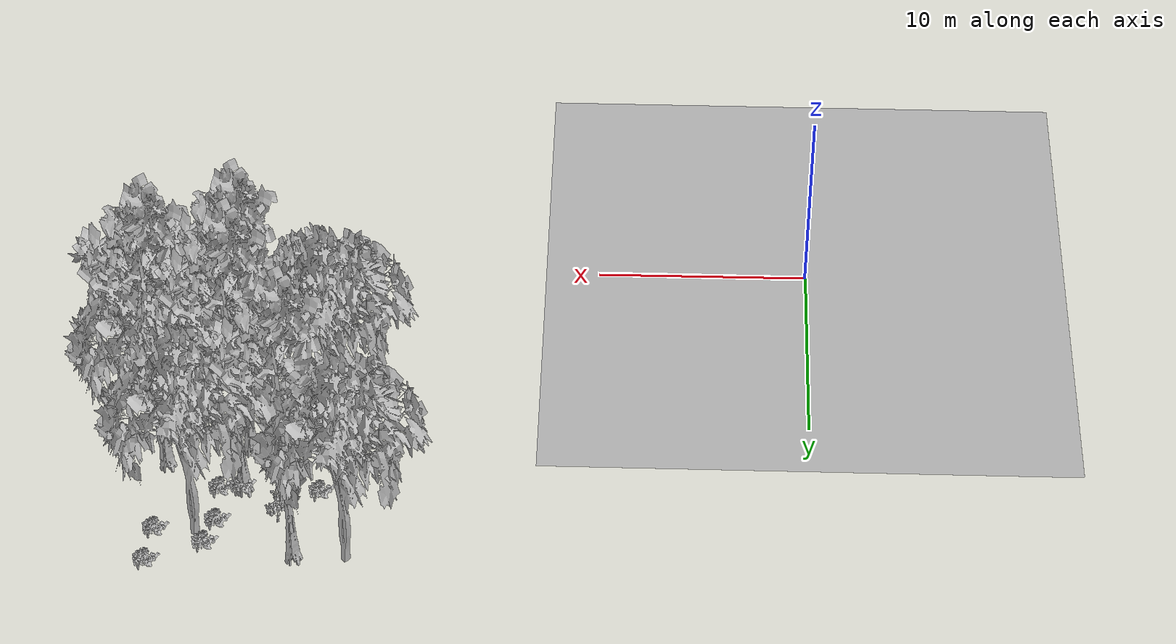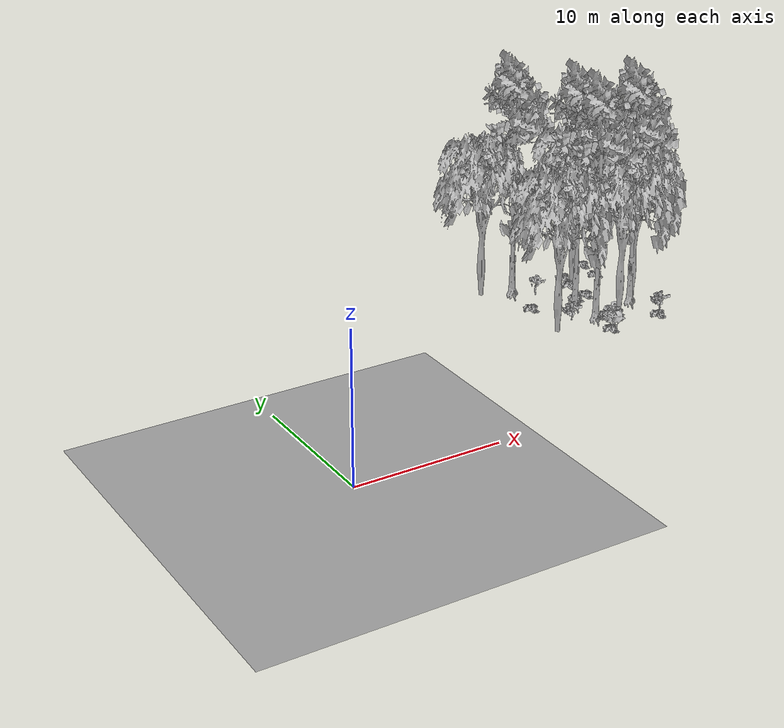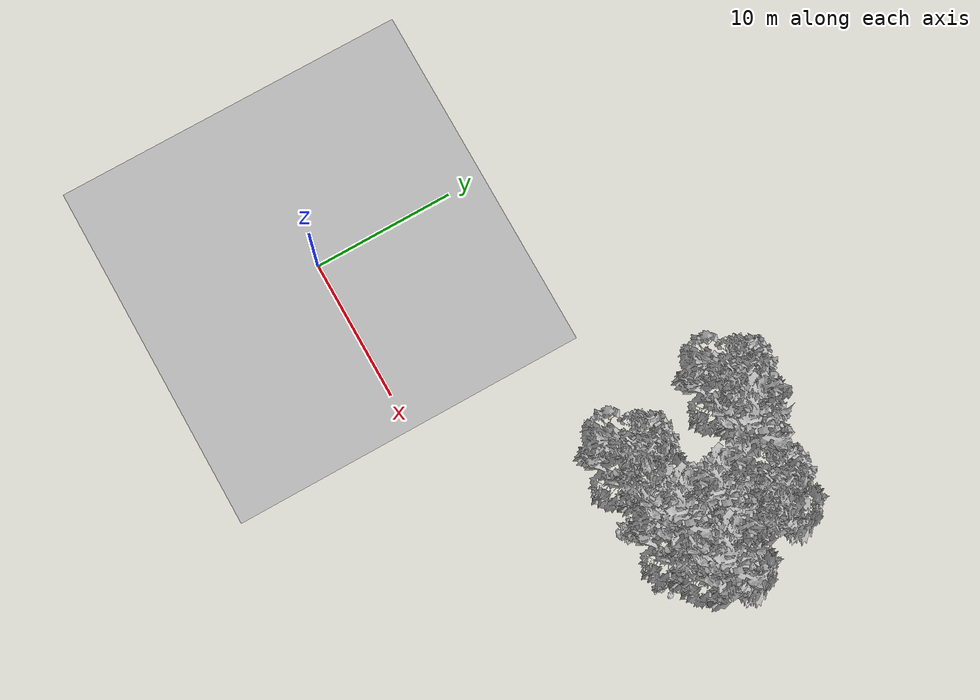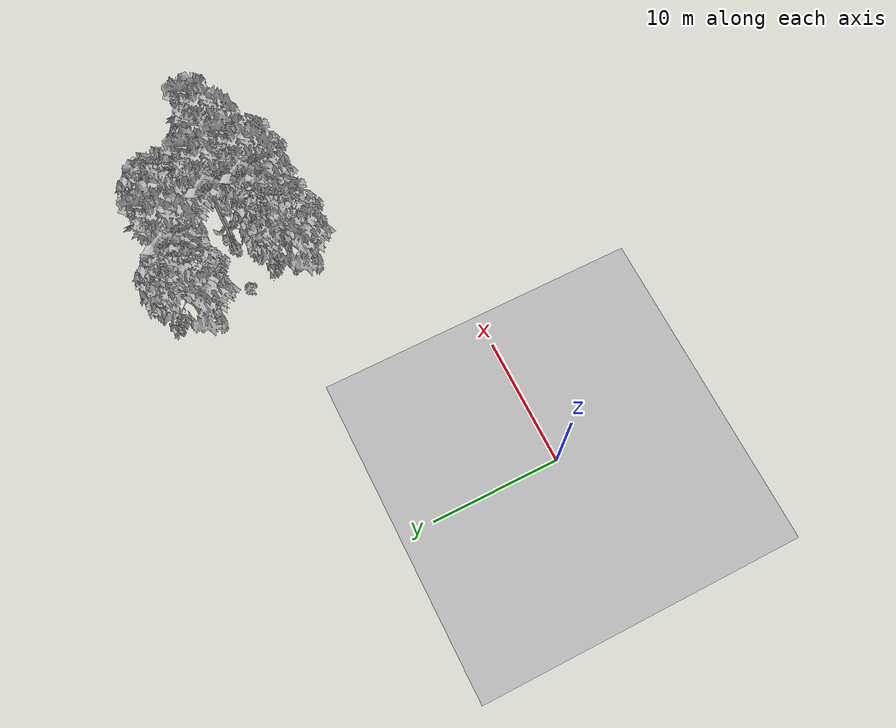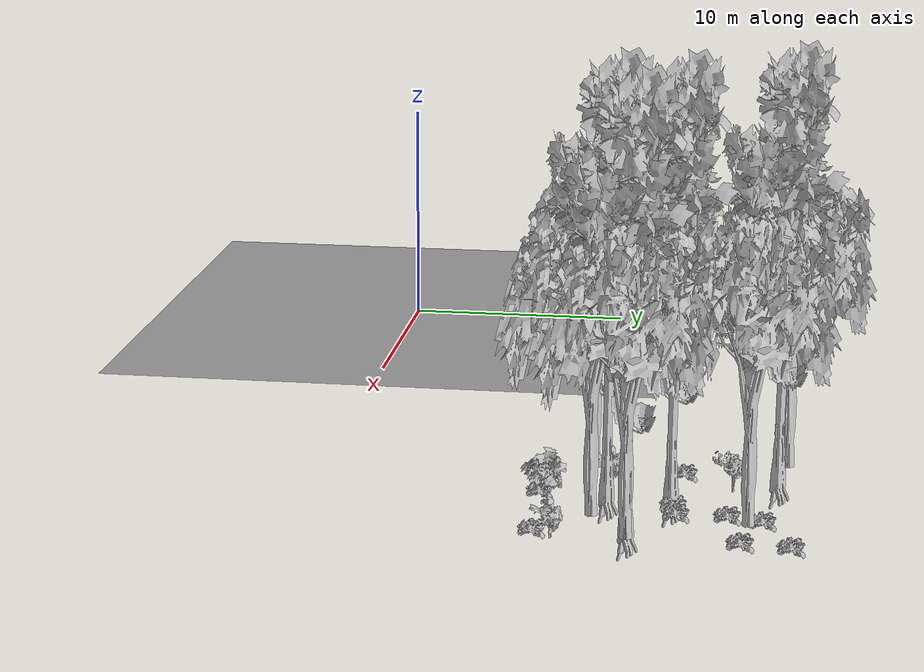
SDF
<sdf version="1.7">
 <world name="default">
  <model name="ground_plane">
   <static>1</static>
   <link name="link">
    <collision name="collision">
     <pose>-50 0 0 0 -0 0</pose>
     <geometry><plane><normal>0 0 1</normal><size>80 80</size></plane></geometry>
     <surface><contact><ode><min_depth>0.01</min_depth><max_vel>0</max_vel></ode></contact></surface>
    </collision>
    <visual name="grass">
     <cast_shadows>0</cast_shadows>
     <geometry>
      <mesh>
       <scale>0.46714285714285714 0.46714285714285714 0.1</scale>
       <uri>file://grass_plane/meshes/grass_plane.dae</uri>
      </mesh>
     </geometry>
    </visual>
   </link>
  </model>
  <model name="Tree 89">
   <static>1</static>
   <pose>29.6455982039528 12.650043496867163 0 1.57079 -0 0</pose>
   <link name="link">
    <collision name="collision">
     <geometry><mesh><scale>3.5 5 3.5</scale><uri>model://tree_9/meshes/tree_9.obj</uri></mesh></geometry>
    </collision>
    <visual name="visual">
     <geometry><mesh><scale>3.5 5 3.5</scale><uri>model://tree_9/meshes/tree_9.obj</uri></mesh></geometry>
    </visual>
   </link>
  </model>
  <model name="Tree 127">
   <static>1</static>
   <pose>21.93287415950089 10.760854535547857 0 1.57079 -0 0</pose>
   <link name="link">
    <collision name="collision">
     <geometry><mesh><scale>3.5 5 3.5</scale><uri>model://tree_2/meshes/tree_2.obj</uri></mesh></geometry>
    </collision>
    <visual name="visual">
     <geometry><mesh><scale>3.5 5 3.5</scale><uri>model://tree_2/meshes/tree_2.obj</uri></mesh></geometry>
    </visual>
   </link>
  </model>
  <model name="Tree 140">
   <static>1</static>
   <pose>29.67400950306441 12.631930863977708 0 1.57079 -0 0</pose>
   <link name="link">
    <collision name="collision">
     <geometry><mesh><scale>3.5 5 3.5</scale><uri>model://tree_2/meshes/tree_2.obj</uri></mesh></geometry>
    </collision>
    <visual name="visual">
     <geometry><mesh><scale>3.5 5 3.5</scale><uri>model://tree_2/meshes/tree_2.obj</uri></mesh></geometry>
    </visual>
   </link>
  </model>
  <model name="Tree 152">
   <static>1</static>
   <pose>20.80105995032826 18.43621723036331 0 1.57079 -0 0</pose>
   <link name="link">
    <collision name="collision">
     <geometry><mesh><scale>3.5 5 3.5</scale><uri>model://tree_2/meshes/tree_2.obj</uri></mesh></geometry>
    </collision>
    <visual name="visual">
     <geometry><mesh><scale>3.5 5 3.5</scale><uri>model://tree_2/meshes/tree_2.obj</uri></mesh></geometry>
    </visual>
   </link>
  </model>
  <model name="Tree 162">
   <static>1</static>
   <pose>25.93168764867991 14.081667291105447 0 1.57079 -0 0</pose>
   <link name="link">
    <collision name="collision">
     <geometry><mesh><scale>3.5 5 3.5</scale><uri>model://tree_9/meshes/tree_9.obj</uri></mesh></geometry>
    </collision>
    <visual name="visual">
     <geometry><mesh><scale>3.5 5 3.5</scale><uri>model://tree_9/meshes/tree_9.obj</uri></mesh></geometry>
    </visual>
   </link>
  </model>
  <model name="Tree 180">
   <static>1</static>
   <pose>25.873476131506408 11.611449633036734 0 1.57079 -0 0</pose>
   <link name="link">
    <collision name="collision">
     <geometry><mesh><scale>3.5 5 3.5</scale><uri>model://tree_9/meshes/tree_9.obj</uri></mesh></geometry>
    </collision>
    <visual name="visual">
     <geometry><mesh><scale>3.5 5 3.5</scale><uri>model://tree_9/meshes/tree_9.obj</uri></mesh></geometry>
    </visual>
   </link>
  </model>
  <model name="Tree 448">
   <static>1</static>
   <pose>27.446581004045967 11.147494233171251 0 1.57079 -0 0</pose>
   <link name="link">
    <collision name="collision">
     <geometry><mesh><scale>3.5 5 3.5</scale><uri>model://tree_2/meshes/tree_2.obj</uri></mesh></geometry>
    </collision>
    <visual name="visual">
     <geometry><mesh><scale>3.5 5 3.5</scale><uri>model://tree_2/meshes/tree_2.obj</uri></mesh></geometry>
    </visual>
   </link>
  </model>
  <model name="Tree 590">
   <static>1</static>
   <pose>27.73215808991273 17.058844495558255 0 1.57079 -0 0</pose>
   <link name="link">
    <collision name="collision">
     <geometry><mesh><scale>3.5 5 3.5</scale><uri>model://tree_2/meshes/tree_2.obj</uri></mesh></geometry>
    </collision>
    <visual name="visual">
     <geometry><mesh><scale>3.5 5 3.5</scale><uri>model://tree_2/meshes/tree_2.obj</uri></mesh></geometry>
    </visual>
   </link>
  </model>
  <model name="Tree 618">
   <static>1</static>
   <pose>23.32143545711785 18.09777417158203 0 1.57079 -0 0</pose>
   <link name="link">
    <collision name="collision">
     <geometry><mesh><scale>3.5 5 3.5</scale><uri>model://tree_9/meshes/tree_9.obj</uri></mesh></geometry>
    </collision>
    <visual name="visual">
     <geometry><mesh><scale>3.5 5 3.5</scale><uri>model://tree_9/meshes/tree_9.obj</uri></mesh></geometry>
    </visual>
   </link>
  </model>
  <model name="Bush 90">
   <static>1</static>
   <pose>30.111485069645113 9.90832596515682 0 1.57079 -0 0</pose>
   <link name="link">
    <collision name="collision">
     <geometry><mesh><scale>2 2 2</scale><uri>model://bush_0/meshes/bush_0.obj</uri></mesh></geometry>
     <surface><contact><collide_without_contact>false</collide_without_contact></contact></surface>
    </collision>
    <visual name="visual">
     <geometry><mesh><scale>2 2 2</scale><uri>model://bush_0/meshes/bush_0.obj</uri></mesh></geometry>
    </visual>
   </link>
  </model>
  <model name="Bush 111">
   <static>1</static>
   <pose>27.38153487698598 17.60296137730856 0 1.57079 -0 0</pose>
   <link name="link">
    <collision name="collision">
     <geometry><mesh><scale>2 2 2</scale><uri>model://bush_2/meshes/bush_2.obj</uri></mesh></geometry>
     <surface><contact><collide_without_contact>false</collide_without_contact></contact></surface>
    </collision>
    <visual name="visual">
     <geometry><mesh><scale>2 2 2</scale><uri>model://bush_2/meshes/bush_2.obj</uri></mesh></geometry>
    </visual>
   </link>
  </model>
  <model name="Bush 154">
   <static>1</static>
   <pose>25.439813759681925 9.056107094964759 0 1.57079 -0 0</pose>
   <link name="link">
    <collision name="collision">
     <geometry><mesh><scale>2 2 2</scale><uri>model://bush_1/meshes/bush_1.obj</uri></mesh></geometry>
     <surface><contact><collide_without_contact>false</collide_without_contact></contact></surface>
    </collision>
    <visual name="visual">
     <geometry><mesh><scale>2 2 2</scale><uri>model://bush_1/meshes/bush_1.obj</uri></mesh></geometry>
    </visual>
   </link>
  </model>
  <model name="Bush 240">
   <static>1</static>
   <pose>22.368954890609935 14.403633241758406 0 1.57079 -0 0</pose>
   <link name="link">
    <collision name="collision">
     <geometry><mesh><scale>2 2 2</scale><uri>model://bush_2/meshes/bush_2.obj</uri></mesh></geometry>
     <surface><contact><collide_without_contact>false</collide_without_contact></contact></surface>
    </collision>
    <visual name="visual">
     <geometry><mesh><scale>2 2 2</scale><uri>model://bush_2/meshes/bush_2.obj</uri></mesh></geometry>
    </visual>
   </link>
  </model>
  <model name="Bush 247">
   <static>1</static>
   <pose>26.964292446743542 16.263953738014735 0 1.57079 -0 0</pose>
   <link name="link">
    <collision name="collision">
     <geometry><mesh><scale>2 2 2</scale><uri>model://bush_2/meshes/bush_2.obj</uri></mesh></geometry>
     <surface><contact><collide_without_contact>false</collide_without_contact></contact></surface>
    </collision>
    <visual name="visual">
     <geometry><mesh><scale>2 2 2</scale><uri>model://bush_2/meshes/bush_2.obj</uri></mesh></geometry>
    </visual>
   </link>
  </model>
  <model name="Bush 266">
   <static>1</static>
   <pose>29.33078442900313 9.119549400970854 0 1.57079 -0 0</pose>
   <link name="link">
    <collision name="collision">
     <geometry><mesh><scale>2 2 2</scale><uri>model://bush_2/meshes/bush_2.obj</uri></mesh></geometry>
     <surface><contact><collide_without_contact>false</collide_without_contact></contact></surface>
    </collision>
    <visual name="visual">
     <geometry><mesh><scale>2 2 2</scale><uri>model://bush_2/meshes/bush_2.obj</uri></mesh></geometry>
    </visual>
   </link>
  </model>
  <model name="Bush 280">
   <static>1</static>
   <pose>23.859016991133764 11.661938181089013 0 1.57079 -0 0</pose>
   <link name="link">
    <collision name="collision">
     <geometry><mesh><scale>2 2 2</scale><uri>model://bush_0/meshes/bush_0.obj</uri></mesh></geometry>
     <surface><contact><collide_without_contact>false</collide_without_contact></contact></surface>
    </collision>
    <visual name="visual">
     <geometry><mesh><scale>2 2 2</scale><uri>model://bush_0/meshes/bush_0.obj</uri></mesh></geometry>
    </visual>
   </link>
  </model>
  <model name="Bush 315">
   <static>1</static>
   <pose>24.16186865884375 16.392903727361556 0 1.57079 -0 0</pose>
   <link name="link">
    <collision name="collision">
     <geometry><mesh><scale>2 2 2</scale><uri>model://bush_5/meshes/bush_5.obj</uri></mesh></geometry>
     <surface><contact><collide_without_contact>false</collide_without_contact></contact></surface>
    </collision>
    <visual name="visual">
     <geometry><mesh><scale>2 2 2</scale><uri>model://bush_5/meshes/bush_5.obj</uri></mesh></geometry>
    </visual>
   </link>
  </model>
  <model name="Bush 422">
   <static>1</static>
   <pose>25.141640310228077 8.941209790338185 0 1.57079 -0 0</pose>
   <link name="link">
    <collision name="collision">
     <geometry><mesh><scale>2 2 2</scale><uri>model://bush_2/meshes/bush_2.obj</uri></mesh></geometry>
     <surface><contact><collide_without_contact>false</collide_without_contact></contact></surface>
    </collision>
    <visual name="visual">
     <geometry><mesh><scale>2 2 2</scale><uri>model://bush_2/meshes/bush_2.obj</uri></mesh></geometry>
    </visual>
   </link>
  </model>
  <model name="Bush 454">
   <static>1</static>
   <pose>29.709878108279895 16.83560910145956 0 1.57079 -0 0</pose>
   <link name="link">
    <collision name="collision">
     <geometry><mesh><scale>2 2 2</scale><uri>model://bush_2/meshes/bush_2.obj</uri></mesh></geometry>
     <surface><contact><collide_without_contact>false</collide_without_contact></contact></surface>
    </collision>
    <visual name="visual">
     <geometry><mesh><scale>2 2 2</scale><uri>model://bush_2/meshes/bush_2.obj</uri></mesh></geometry>
    </visual>
   </link>
  </model>
  <model name="Bush 460">
   <static>1</static>
   <pose>26.020548044019733 14.179613279076932 0 1.57079 -0 0</pose>
   <link name="link">
    <collision name="collision">
     <geometry><mesh><scale>2 2 2</scale><uri>model://bush_2/meshes/bush_2.obj</uri></mesh></geometry>
     <surface><contact><collide_without_contact>false</collide_without_contact></contact></surface>
    </collision>
    <visual name="visual">
     <geometry><mesh><scale>2 2 2</scale><uri>model://bush_2/meshes/bush_2.obj</uri></mesh></geometry>
    </visual>
   </link>
  </model>
  <model name="Bush 621">
   <static>1</static>
   <pose>29.913389535254453 18.694734802039044 0 1.57079 -0 0</pose>
   <link name="link">
    <collision name="collision">
     <geometry><mesh><scale>2 2 2</scale><uri>model://bush_2/meshes/bush_2.obj</uri></mesh></geometry>
     <surface><contact><collide_without_contact>false</collide_without_contact></contact></surface>
    </collision>
    <visual name="visual">
     <geometry><mesh><scale>2 2 2</scale><uri>model://bush_2/meshes/bush_2.obj</uri></mesh></geometry>
    </visual>
   </link>
  </model>
  <model name="Bush 630">
   <static>1</static>
   <pose>26.98106767436387 14.327766349041767 0 1.57079 -0 0</pose>
   <link name="link">
    <collision name="collision">
     <geometry><mesh><scale>2 2 2</scale><uri>model://bush_2/meshes/bush_2.obj</uri></mesh></geometry>
     <surface><contact><collide_without_contact>false</collide_without_contact></contact></surface>
    </collision>
    <visual name="visual">
     <geometry><mesh><scale>2 2 2</scale><uri>model://bush_2/meshes/bush_2.obj</uri></mesh></geometry>
    </visual>
   </link>
  </model>
 </world>
</sdf>
